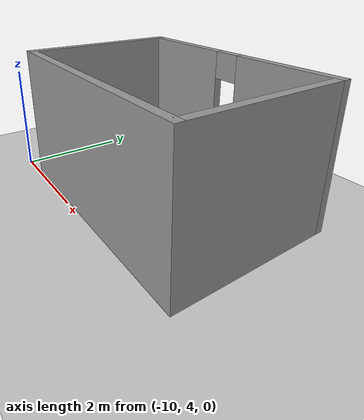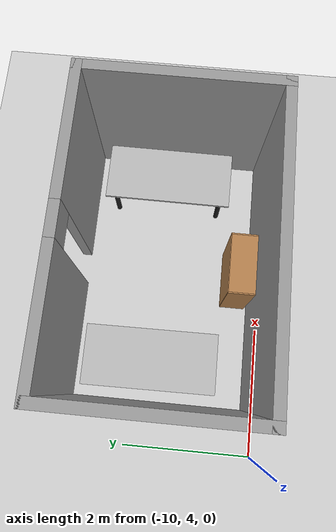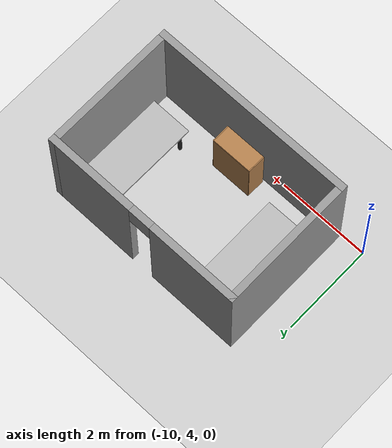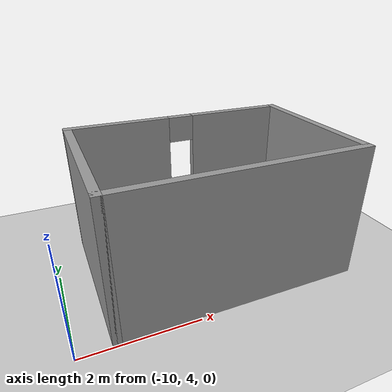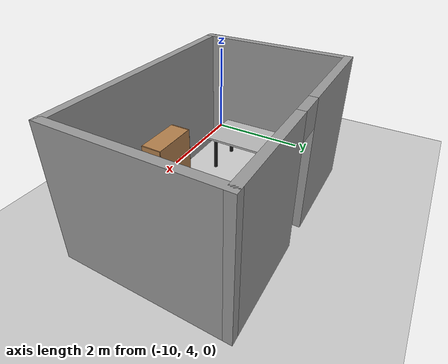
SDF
<sdf version="1.7">
 <world name="default">
  <light name="sun" type="directional">
   <pose>0 0 10 0 -0 0</pose>
   <diffuse>0.8 0.8 0.8 1</diffuse>
   <specular>0.2 0.2 0.2 1</specular>
   <attenuation>
    <range>1000</range>
    <constant>0.9</constant>
    <linear>0.01</linear>
    <quadratic>0.001</quadratic>
   </attenuation>
   <direction>-0.5 0.1 -0.9</direction>
   <spot><inner_angle>0</inner_angle><outer_angle>0</outer_angle><falloff>0</falloff></spot>
  </light>
  <model name="ground_plane">
   <static>1</static>
   <link name="link">
    <collision name="collision">
     <geometry><plane><normal>0 0 1</normal><size>100 100</size></plane></geometry>
     <surface><friction><ode><mu>100</mu><mu2>50</mu2></ode></friction></surface>
    </collision>
    <visual name="visual">
     <cast_shadows>0</cast_shadows>
     <geometry><plane><normal>0 0 1</normal><size>100 100</size></plane></geometry>
     <material>
      <script><uri>file://media/materials/scripts/gazebo.material</uri><name>Gazebo/Grey</name></script>
     </material>
    </visual>
   </link>
  </model>
  <gravity>0 0 -9.8</gravity>
  <magnetic_field>6e-06 2.3e-05 -4.2e-05</magnetic_field>
  <atmosphere type="adiabatic"/>
  <physics type="ode">
   <max_step_size>0.001</max_step_size>
   <real_time_factor>1</real_time_factor>
   <real_time_update_rate>1000</real_time_update_rate>
  </physics>
  <scene><ambient>0.4 0.4 0.4 1</ambient><background>0.7 0.7 0.7 1</background><shadows>1</shadows></scene>
  <audio><device>default</device></audio>
  <spherical_coordinates>
   <surface_model>EARTH_WGS84</surface_model>
   <latitude_deg>0</latitude_deg>
   <longitude_deg>0</longitude_deg>
   <elevation>0</elevation>
   <heading_deg>0</heading_deg>
  </spherical_coordinates>
  <model name="Hospital">
   <pose>-4.8101 3.5047 0 0 -0 0</pose>
   <link name="Wall_4">
    <collision name="Wall_4_Collision">
     <geometry><box><size>3 0.15 2.5</size></box></geometry>
     <pose>0 0 1.25 0 -0 0</pose>
    </collision>
    <visual name="Wall_4_Visual">
     <pose>0 0 1.25 0 -0 0</pose>
     <geometry><box><size>3 0.15 2.5</size></box></geometry>
     <material>
      <script><uri>file://media/materials/scripts/gazebo.material</uri><name>Gazebo/Grey</name></script>
      <ambient>1 1 1 1</ambient>
     </material>
     <meta><layer>0</layer></meta>
    </visual>
    <pose>-4.56307 2.02993 0 0 -0 -1.5708</pose>
   </link>
   <link name="Wall_5">
    <collision name="Wall_5_Collision">
     <geometry><box><size>4.5 0.15 2.5</size></box></geometry>
     <pose>0 0 1.25 0 -0 0</pose>
    </collision>
    <visual name="Wall_5_Visual">
     <pose>0 0 1.25 0 -0 0</pose>
     <geometry><box><size>4.5 0.15 2.5</size></box></geometry>
     <material>
      <script><uri>file://media/materials/scripts/gazebo.material</uri><name>Gazebo/Grey</name></script>
      <ambient>1 1 1 1</ambient>
     </material>
     <meta><layer>0</layer></meta>
    </visual>
    <pose>-2.38807 0.60493 0 0 -0 0</pose>
   </link>
   <link name="Wall_6">
    <collision name="Wall_6_Collision">
     <geometry><box><size>3 0.15 2.5</size></box></geometry>
     <pose>0 0 1.25 0 -0 0</pose>
    </collision>
    <visual name="Wall_6_Visual">
     <pose>0 0 1.25 0 -0 0</pose>
     <geometry><box><size>3 0.15 2.5</size></box></geometry>
     <material>
      <script><uri>file://media/materials/scripts/gazebo.material</uri><name>Gazebo/Grey</name></script>
      <ambient>1 1 1 1</ambient>
     </material>
     <meta><layer>0</layer></meta>
    </visual>
    <pose>-0.213071 2.02993 0 0 -0 1.5708</pose>
   </link>
   <link name="Wall_7">
    <pose>-2.38807 3.45493 0 0 -0 3.14159</pose>
    <visual name="Wall_7_Visual_0">
     <pose>-1.25126 0 1.25 0 -0 0</pose>
     <geometry><box><size>1.99749 0.15 2.5</size></box></geometry>
     <material>
      <script><uri>file://media/materials/scripts/gazebo.material</uri><name>Gazebo/Grey</name></script>
      <ambient>1 1 1 1</ambient>
     </material>
     <meta><layer>0</layer></meta>
    </visual>
    <collision name="Wall_7_Collision_0">
     <geometry><box><size>1.99749 0.15 2.5</size></box></geometry>
     <pose>-1.25126 0 1.25 0 -0 0</pose>
    </collision>
    <visual name="Wall_7_Visual_1">
     <pose>1.24874 0 1.25 0 -0 0</pose>
     <geometry><box><size>2.00251 0.15 2.5</size></box></geometry>
     <material>
      <script><uri>file://media/materials/scripts/gazebo.material</uri><name>Gazebo/Grey</name></script>
      <ambient>1 1 1 1</ambient>
     </material>
     <meta><layer>0</layer></meta>
    </visual>
    <collision name="Wall_7_Collision_1">
     <geometry><box><size>2.00251 0.15 2.5</size></box></geometry>
     <pose>1.24874 0 1.25 0 -0 0</pose>
    </collision>
    <visual name="Wall_7_Visual_2">
     <pose>-0.002513 0 2.25 0 -0 0</pose>
     <geometry><box><size>0.5 0.15 0.5</size></box></geometry>
     <material>
      <script><uri>file://media/materials/scripts/gazebo.material</uri><name>Gazebo/Grey</name></script>
      <ambient>1 1 1 1</ambient>
     </material>
     <meta><layer>0</layer></meta>
    </visual>
    <collision name="Wall_7_Collision_2">
     <geometry><box><size>0.5 0.15 0.5</size></box></geometry>
     <pose>-0.002513 0 2.25 0 -0 0</pose>
    </collision>
   </link>
   <static>1</static>
  </model>
  <model name="custom_table_primitives">
   <static>1</static>
   <pose>-8.66638 5.67293 -0 0 0 -1.56367</pose>
   <link name="link">
    <collision name="top_collision">
     <pose>0 0 0.73 0 -0 0</pose>
     <geometry><box><size>1.5 0.9 0.04</size></box></geometry>
    </collision>
    <visual name="top_visual">
     <pose>0 0 0.73 0 -0 0</pose>
     <geometry><box><size>2 0.9 0.04</size></box></geometry>
     <material>
      <script>
       <uri>model://table_marble/materials/scripts</uri>
       <uri>model://table_marble/materials/textures</uri>
       <name>Table/Marble_Lightmap</name>
      </script>
     </material>
    </visual>
    <collision name="leg1_collision">
     <pose>0.85 0.35 0.35 0 -0 0</pose>
     <geometry><cylinder><radius>0.04</radius><length>0.65</length></cylinder></geometry>
    </collision>
    <visual name="leg1_visual">
     <pose>0.85 0.35 0.35 0 -0 0</pose>
     <geometry><cylinder><radius>0.04</radius><length>0.65</length></cylinder></geometry>
     <material><ambient>0.1 0.1 0.1 1</ambient></material>
    </visual>
    <collision name="leg2_collision">
     <pose>0.85 -0.35 0.35 0 -0 0</pose>
     <geometry><cylinder><radius>0.04</radius><length>0.65</length></cylinder></geometry>
    </collision>
    <visual name="leg2_visual">
     <pose>0.85 -0.35 0.35 0 -0 0</pose>
     <geometry><cylinder><radius>0.04</radius><length>0.65</length></cylinder></geometry>
     <material><ambient>0.1 0.1 0.1 1</ambient></material>
    </visual>
    <collision name="leg3_collision">
     <pose>-0.85 0.35 0.35 0 -0 0</pose>
     <geometry><cylinder><radius>0.04</radius><length>0.65</length></cylinder></geometry>
    </collision>
    <visual name="leg3_visual">
     <pose>-0.85 0.35 0.35 0 -0 0</pose>
     <geometry><cylinder><radius>0.04</radius><length>0.65</length></cylinder></geometry>
     <material><ambient>0.1 0.1 0.1 1</ambient></material>
    </visual>
    <collision name="leg4_collision">
     <pose>-0.85 -0.35 0.35 0 -0 0</pose>
     <geometry><cylinder><radius>0.04</radius><length>0.65</length></cylinder></geometry>
    </collision>
    <visual name="leg4_visual">
     <pose>-0.85 -0.35 0.35 0 -0 0</pose>
     <geometry><cylinder><radius>0.04</radius><length>0.65</length></cylinder></geometry>
     <material><ambient>0.1 0.1 0.1 1</ambient></material>
    </visual>
   </link>
  </model>
  <model name="custom_table_primitives_0">
   <static>1</static>
   <pose>-5.68479 5.65449 -0 0 0 -1.57576</pose>
   <link name="link">
    <collision name="top_collision">
     <pose>0 0 0.73 0 -0 0</pose>
     <geometry><box><size>1.5 0.9 0.04</size></box></geometry>
    </collision>
    <visual name="top_visual">
     <pose>0 0 0.73 0 -0 0</pose>
     <geometry><box><size>2 0.9 0.04</size></box></geometry>
     <material>
      <script>
       <uri>model://table_marble/materials/scripts</uri>
       <uri>model://table_marble/materials/textures</uri>
       <name>Table/Marble_Lightmap</name>
      </script>
     </material>
    </visual>
    <collision name="leg1_collision">
     <pose>0.85 0.35 0.35 0 -0 0</pose>
     <geometry><cylinder><radius>0.04</radius><length>0.65</length></cylinder></geometry>
    </collision>
    <visual name="leg1_visual">
     <pose>0.85 0.35 0.35 0 -0 0</pose>
     <geometry><cylinder><radius>0.04</radius><length>0.65</length></cylinder></geometry>
     <material><ambient>0.1 0.1 0.1 1</ambient></material>
    </visual>
    <collision name="leg2_collision">
     <pose>0.85 -0.35 0.35 0 -0 0</pose>
     <geometry><cylinder><radius>0.04</radius><length>0.65</length></cylinder></geometry>
    </collision>
    <visual name="leg2_visual">
     <pose>0.85 -0.35 0.35 0 -0 0</pose>
     <geometry><cylinder><radius>0.04</radius><length>0.65</length></cylinder></geometry>
     <material><ambient>0.1 0.1 0.1 1</ambient></material>
    </visual>
    <collision name="leg3_collision">
     <pose>-0.85 0.35 0.35 0 -0 0</pose>
     <geometry><cylinder><radius>0.04</radius><length>0.65</length></cylinder></geometry>
    </collision>
    <visual name="leg3_visual">
     <pose>-0.85 0.35 0.35 0 -0 0</pose>
     <geometry><cylinder><radius>0.04</radius><length>0.65</length></cylinder></geometry>
     <material><ambient>0.1 0.1 0.1 1</ambient></material>
    </visual>
    <collision name="leg4_collision">
     <pose>-0.85 -0.35 0.35 0 -0 0</pose>
     <geometry><cylinder><radius>0.04</radius><length>0.65</length></cylinder></geometry>
    </collision>
    <visual name="leg4_visual">
     <pose>-0.85 -0.35 0.35 0 -0 0</pose>
     <geometry><cylinder><radius>0.04</radius><length>0.65</length></cylinder></geometry>
     <material><ambient>0.1 0.1 0.1 1</ambient></material>
    </visual>
   </link>
  </model>
  <model name="bookshelf">
   <static>1</static>
   <link name="link">
    <inertial><mass>1</mass></inertial>
    <collision name="back">
     <pose>0 0.005 0.6 0 -0 0</pose>
     <geometry><box><size>0.9 0.01 1.2</size></box></geometry>
    </collision>
    <visual name="visual1">
     <pose>0 0.005 0.6 0 -0 0</pose>
     <geometry><box><size>0.9 0.01 1.2</size></box></geometry>
     <material>
      <script><uri>file://media/materials/scripts/gazebo.material</uri><name>Gazebo/Wood</name></script>
     </material>
    </visual>
    <collision name="left_side">
     <pose>0.45 -0.195 0.6 0 -0 0</pose>
     <geometry><box><size>0.02 0.4 1.2</size></box></geometry>
    </collision>
    <visual name="visual2">
     <pose>0.45 -0.195 0.6 0 -0 0</pose>
     <geometry><box><size>0.02 0.4 1.2</size></box></geometry>
     <material>
      <script><uri>file://media/materials/scripts/gazebo.material</uri><name>Gazebo/Wood</name></script>
     </material>
    </visual>
    <collision name="right_side">
     <pose>-0.45 -0.195 0.6 0 -0 0</pose>
     <geometry><box><size>0.02 0.4 1.2</size></box></geometry>
    </collision>
    <visual name="visual3">
     <pose>-0.45 -0.195 0.6 0 -0 0</pose>
     <geometry><box><size>0.02 0.4 1.2</size></box></geometry>
     <material>
      <script><uri>file://media/materials/scripts/gazebo.material</uri><name>Gazebo/Wood</name></script>
     </material>
    </visual>
    <collision name="bottom">
     <pose>0 -0.195 0.03 0 -0 0</pose>
     <geometry><box><size>0.88 0.4 0.06</size></box></geometry>
    </collision>
    <visual name="visual4">
     <pose>0 -0.195 0.03 0 -0 0</pose>
     <geometry><box><size>0.88 0.4 0.06</size></box></geometry>
     <material>
      <script><uri>file://media/materials/scripts/gazebo.material</uri><name>Gazebo/Wood</name></script>
     </material>
    </visual>
    <collision name="top">
     <pose>0 -0.195 1.19 0 -0 0</pose>
     <geometry><box><size>0.88 0.4 0.02</size></box></geometry>
    </collision>
    <visual name="visual5">
     <pose>0 -0.195 1.19 0 -0 0</pose>
     <geometry><box><size>0.88 0.4 0.02</size></box></geometry>
     <material>
      <script><uri>file://media/materials/scripts/gazebo.material</uri><name>Gazebo/Wood</name></script>
     </material>
    </visual>
    <collision name="low_shelf">
     <pose>0 -0.195 0.43 0 -0 0</pose>
     <geometry><box><size>0.88 0.4 0.02</size></box></geometry>
    </collision>
    <visual name="visual6">
     <pose>0 -0.195 0.43 0 -0 0</pose>
     <geometry><box><size>0.88 0.4 0.02</size></box></geometry>
     <material>
      <script><uri>file://media/materials/scripts/gazebo.material</uri><name>Gazebo/Wood</name></script>
     </material>
    </visual>
    <collision name="high_shelf">
     <pose>0 -0.195 0.8 0 -0 0</pose>
     <geometry><box><size>0.88 0.4 0.02</size></box></geometry>
    </collision>
    <visual name="visual7">
     <pose>0 -0.195 0.8 0 -0 0</pose>
     <geometry><box><size>0.88 0.4 0.02</size></box></geometry>
     <material>
      <script><uri>file://media/materials/scripts/gazebo.material</uri><name>Gazebo/Wood</name></script>
     </material>
    </visual>
   </link>
   <pose>-7.18894 4.61938 0 0 -0 0</pose>
  </model>
 </world>
</sdf>
